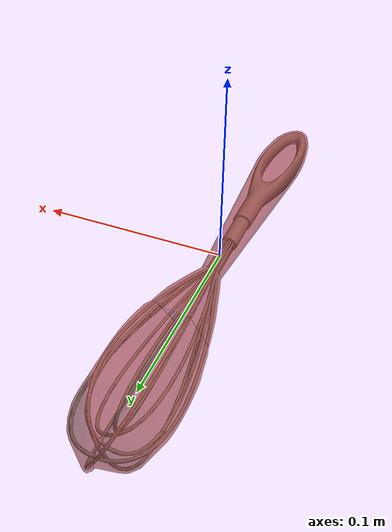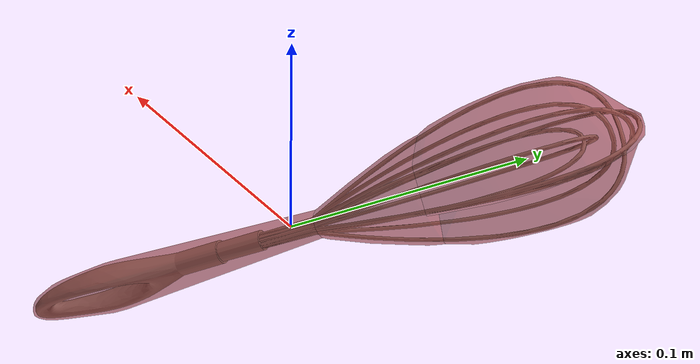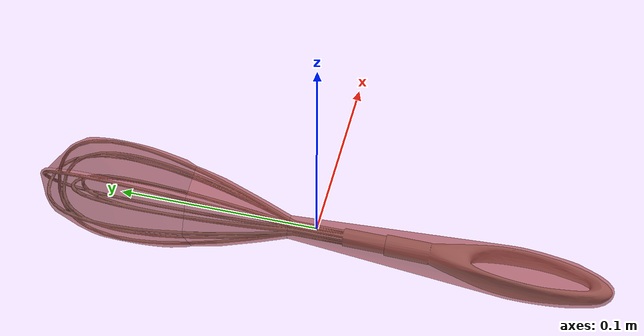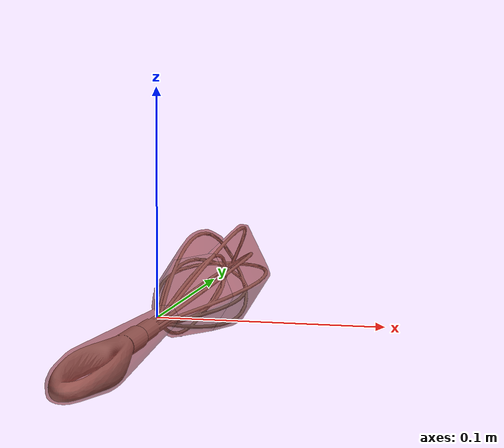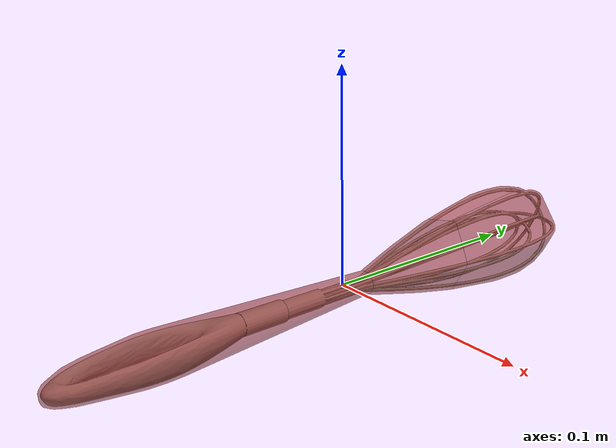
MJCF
<mujoco model="model">
  <option timestep="0.002" gravity="0.0 0.0 -9.81"/>
  <compiler angle="radian"/>
  <asset>
    <mesh file="visual/Whisk003.obj" name="Whisk003_vis"/>
    <mesh file="visual/Prop.obj" name="Whisk003_Prop_vis"/>
    <texture file="visual/T_BC001.png" name="Whisk003_material" type="2d"/>
    <material name="Whisk003_material" rgba="1 1 1 1.0" texture="Whisk003_material" shininess="1" specular="2"/>
    <texture file="visual/T_BC001.png" name="Whisk003_Prop_material" type="2d"/>
    <material name="Whisk003_Prop_material" rgba="1 1 1 1.0" texture="Whisk003_Prop_material" shininess="0.4472135901451111" specular="0.3103448502657381"/>
    <mesh file="collision/collision_mesh_collision_0.obj" name="Whisk003_collision_mesh_0"/>
    <mesh file="collision/collision_mesh_collision_1.obj" name="Whisk003_collision_mesh_1"/>
    <mesh file="collision/collision_mesh_collision_2.obj" name="Whisk003_collision_mesh_2"/>
    <mesh file="collision/collision_mesh_collision_3.obj" name="Whisk003_collision_mesh_3"/>
  </asset>
  <default>
    <default class="visual">
      <geom conaffinity="0" contype="0" group="1" type="mesh"/>
    </default>
    <default class="collision">
      <geom group="0" rgba="0.5 0 0 0.5" density="1.0" solref="0.004 1" solimp="0.998 0.998 0.001"/>
    </default>
    <default class="spawn">
      <geom group="0" rgba="1 1 1 0.5" contype="0" conaffinity="0"/>
      <site group="0" rgba="1 1 1 0.5"/>
    </default>
    <default class="region">
      <geom group="1" conaffinity="0" contype="0" rgba="0 1 0 0" mass="0"/>
    </default>
  </default>
  <worldbody>
    <body>
      <body name="object">
        <geom mesh="Whisk003_vis" type="mesh" solimp="0.998 0.998 0.001" solref="0.001 1" friction="0.95 0.3 0.1" class="visual" material="Whisk003_material"/>
        <body name="Whisk003_Prop">
          <geom mesh="Whisk003_Prop_vis" type="mesh" solimp="0.998 0.998 0.001" solref="0.001 1" friction="0.95 0.3 0.1" class="visual" material="Whisk003_Prop_material"/>
        </body>
        <geom class="region" name="reg_bbox" type="box" pos="-4.795000000000146e-06 -2.8614999999995727e-05 0.0007172499999999991" size="0.023355275 0.141758555 0.02466993"/>
        <geom mesh="Whisk003_collision_mesh_0" type="mesh" class="collision"/>
        <geom mesh="Whisk003_collision_mesh_1" type="mesh" class="collision"/>
        <geom mesh="Whisk003_collision_mesh_2" type="mesh" class="collision"/>
        <geom mesh="Whisk003_collision_mesh_3" type="mesh" class="collision"/>
      </body>
    </body>
  </worldbody>
  <actuator/>
</mujoco>
